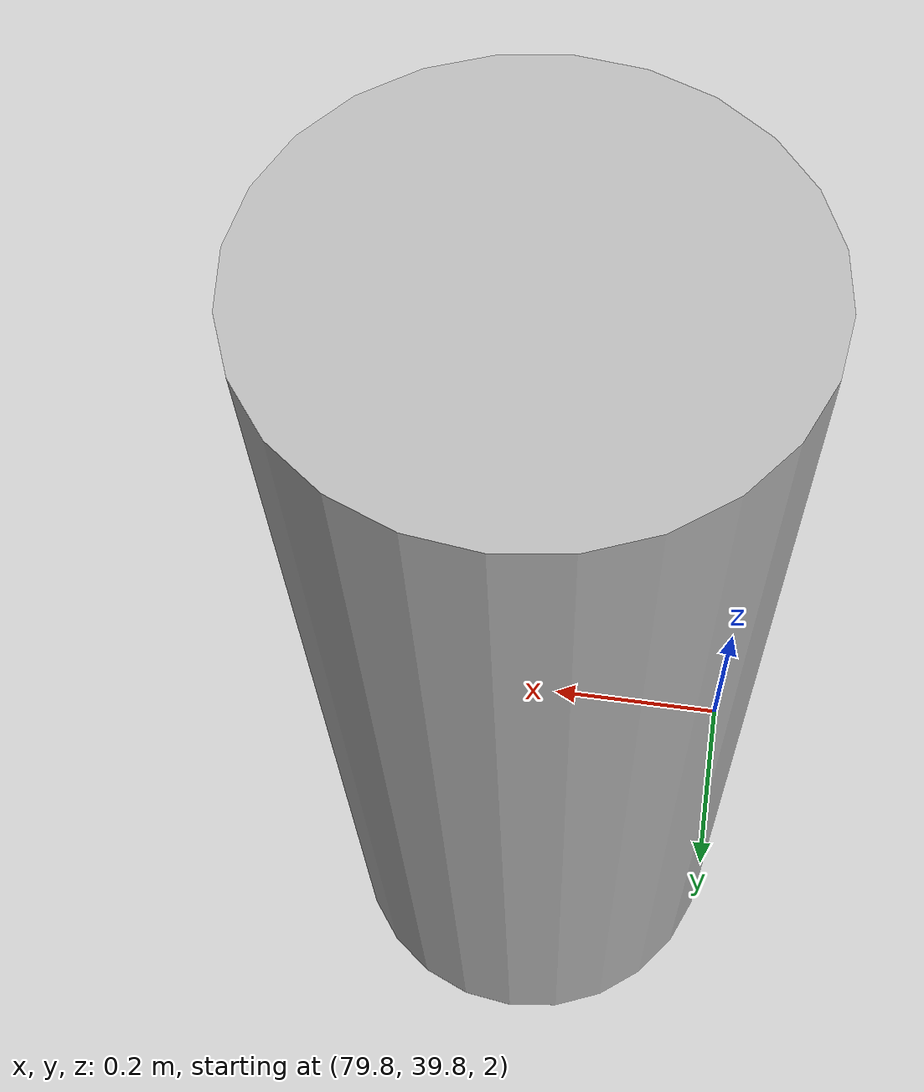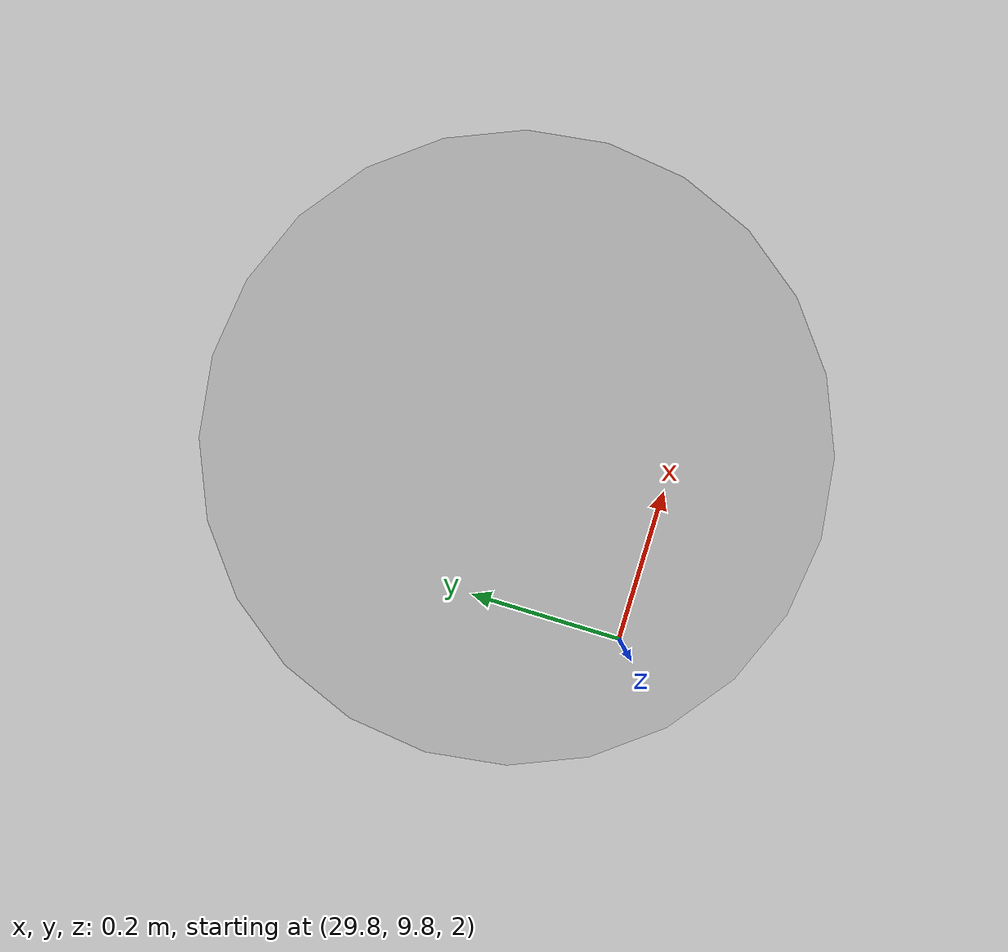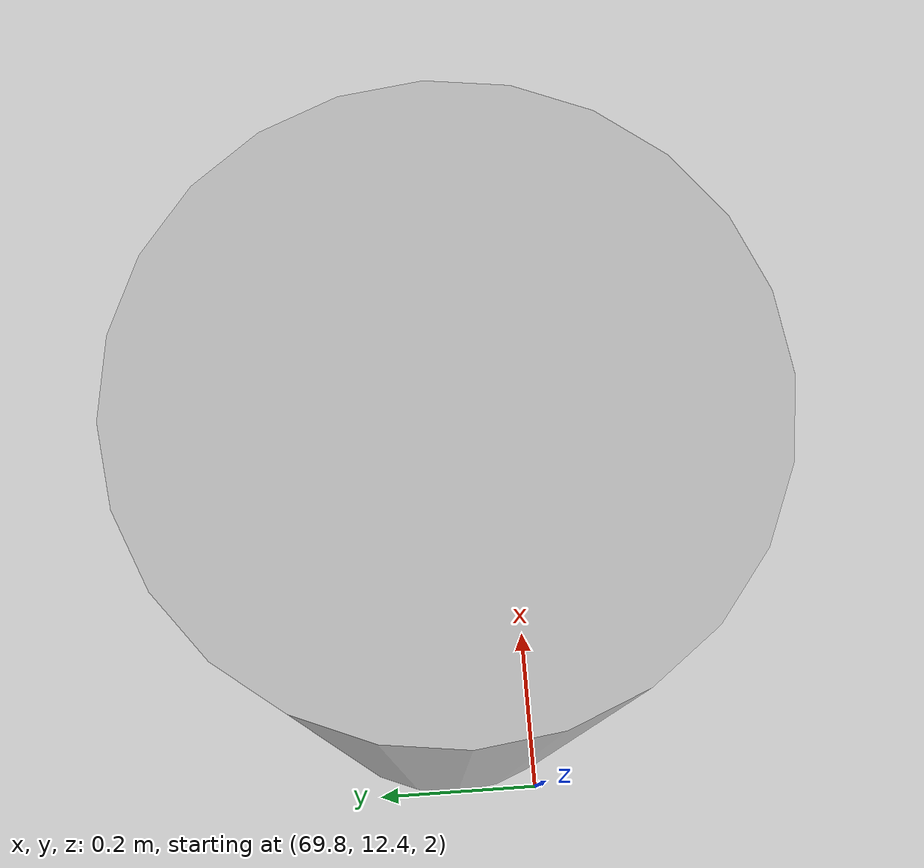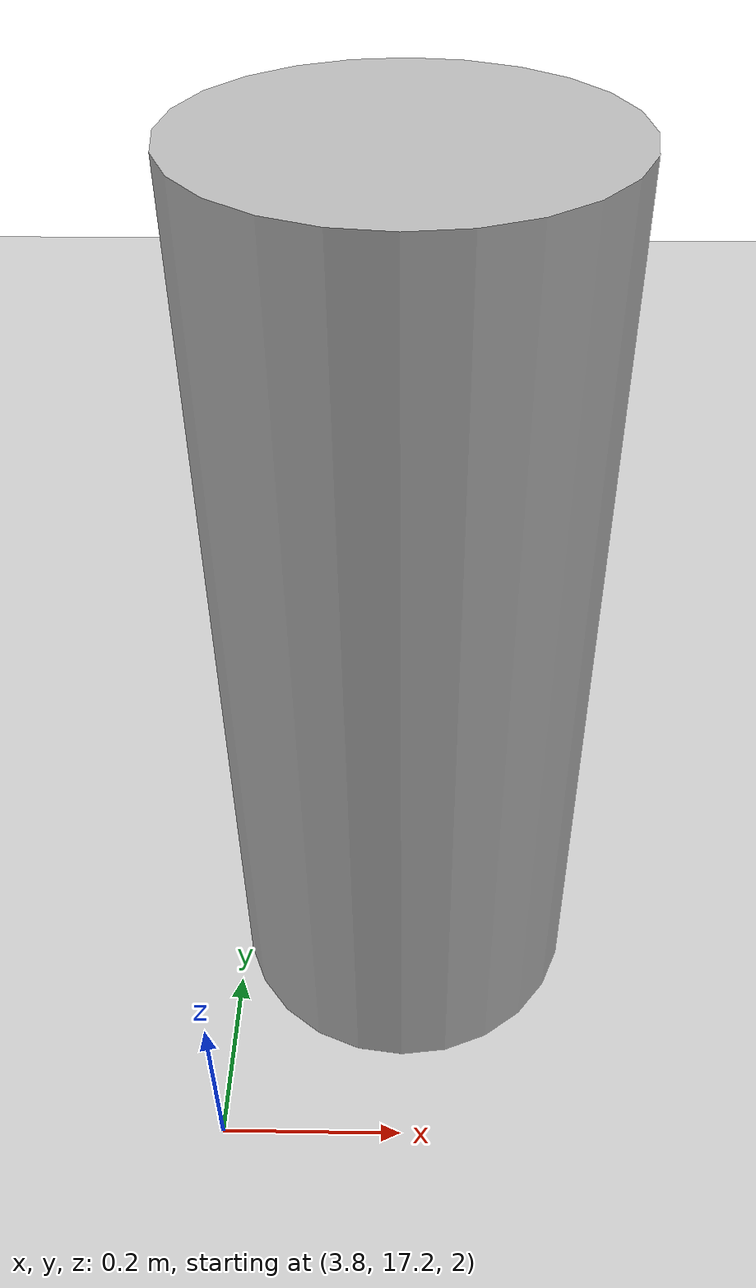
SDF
<?xml version="1.0" ?>
<sdf version="1.5">
  <world name="Scenario 2">
    <include>
      <uri>model://ground_plane</uri>
    </include>
    <include>
      <uri>model://sun</uri>
    </include>
    <include>
      <uri>model://reflector_1</uri>
      <name>reflector</name>
      <pose>80 40 0 0 0 0</pose>
    </include>
    <include>
      <uri>model://reflector_1</uri>
      <name>reflector</name>
      <pose>70 12.5 0 0 0 0</pose>
    </include>
    <include>
      <uri>model://reflector_1</uri>
      <name>reflector</name>
      <pose>45 45 0 0 0 0</pose>
    </include>
    <include>
      <uri>model://reflector_1</uri>
      <name>reflector</name>
      <pose>30 10 0 0 0 0</pose>
    </include>
    <include>
      <uri>model://reflector_1</uri>
      <name>reflector</name>
      <pose>15 35 0 0 0 0</pose>
    </include>
    <include>
      <uri>model://reflector_1</uri>
      <name>reflector</name>
      <pose>4 17.5 0 0 0 0</pose>
    </include>
  </world>
</sdf>

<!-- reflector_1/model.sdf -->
<sdf version="1.6">
  <model name="reflector_1">
    <static>true</static>
    <link name="link">
      <pose>0 0 2.5 0 0 0</pose>
      <collision name="collision">
        <laser_retro>200</laser_retro>
        <geometry>
          <cylinder>
            <radius>0.2</radius>
            <length>1</length>
          </cylinder>
        </geometry>
      </collision>

      <visual name="visual">
        <geometry>
          <cylinder>
            <radius>0.2</radius>
            <length>1</length>
          </cylinder>
        </geometry>
      </visual>
    </link>
  </model>
</sdf>
